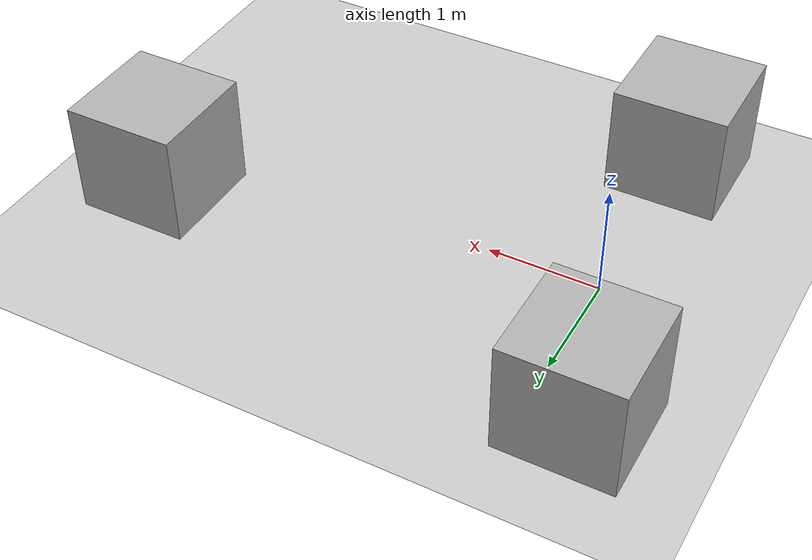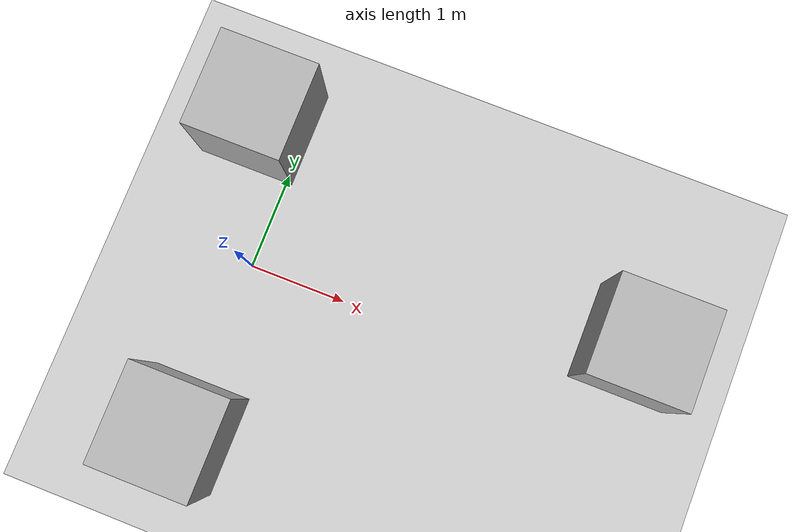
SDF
<sdf version='1.7'>
  <world name='empty'>
    <scene>
      <shadows>false</shadows>
      <ambient>0.400000006 0.400000006 0.400000006 1</ambient>
      <background>0.699999988 0.699999988 0.699999988 1</background>
    </scene>
    <physics name='1ms' type='ignored'>
      <max_step_size>0.001</max_step_size>
      <real_time_factor>1</real_time_factor>
      <real_time_update_rate>25</real_time_update_rate>
    </physics>
    <plugin name='gz::sim::systems::Physics' filename='gz-sim-physics-system'/>
    <plugin name='gz::sim::systems::UserCommands' filename='gz-sim-user-commands-system'/>
    <plugin name='gz::sim::systems::SceneBroadcaster' filename='gz-sim-scene-broadcaster-system'/>
    <plugin name='gz::sim::systems::Sensors' filename='gz-sim-sensors-system'>
      <render_engine>ogre2</render_engine>
    </plugin>
    <plugin name='gz::sim::systems::Contact' filename='gz-sim-contact-system'/>
    <gravity>0 0 -9.8000000000000007</gravity>
    <magnetic_field>5.5644999999999998e-06 2.2875799999999999e-05 -4.2388400000000002e-05</magnetic_field>
    <atmosphere type='adiabatic'/>
    <model name='ground_plane'>
      <static>true</static>
      <link name='link'>
        <collision name='collision'>
          <geometry>
            <plane>
              <normal>0 0 1</normal>
              <size>100 100</size>
            </plane>
          </geometry>
          <surface>
            <friction>
              <ode/>
            </friction>
            <bounce/>
            <contact/>
          </surface>
        </collision>
        <visual name='visual'>
          <geometry>
            <plane>
              <normal>0 0 1</normal>
              <size>100 100</size>
            </plane>
          </geometry>
          <material>
            <ambient>0.800000012 0.800000012 0.800000012 1</ambient>
            <diffuse>0.800000012 0.800000012 0.800000012 1</diffuse>
            <specular>0.800000012 0.800000012 0.800000012 1</specular>
          </material>
        </visual>
        <pose>0 0 0 0 0 0</pose>
        <inertial>
          <pose>0 0 0 0 0 0</pose>
          <mass>1</mass>
          <inertia>
            <ixx>1</ixx>
            <ixy>0</ixy>
            <ixz>0</ixz>
            <iyy>1</iyy>
            <iyz>0</iyz>
            <izz>1</izz>
          </inertia>
        </inertial>
        <enable_wind>false</enable_wind>
      </link>
      <pose>0 0 0 0 0 0</pose>
      <self_collide>false</self_collide>
    </model>

    <model name='box'>
      <pose>3.8641762684934875 0.61530962220477359 0.49999999990199806 6.2287739151293738e-22 9.3279666454713669e-22 -3.6315533669320137e-22</pose>
      <link name='box_link'>
        <inertial>
          <inertia>
            <ixx>0.16666</ixx>
            <ixy>0</ixy>
            <ixz>0</ixz>
            <iyy>0.16666</iyy>
            <iyz>0</iyz>
            <izz>0.16666</izz>
          </inertia>
          <mass>1</mass>
          <pose>0 0 0 0 0 0</pose>
        </inertial>
        <collision name='box_collision'>
          <geometry>
            <box>
              <size>1 1 1</size>
            </box>
          </geometry>
          <surface>
            <friction>
              <ode/>
            </friction>
            <bounce/>
            <contact/>
          </surface>
        </collision>
        <visual name='box_visual'>
          <geometry>
            <box>
              <size>1 1 1</size>
            </box>
          </geometry>
          <material>
            <ambient>0.300000012 0.300000012 0.300000012 1</ambient>
            <diffuse>0.699999988 0.699999988 0.699999988 1</diffuse>
            <specular>1 1 1 1</specular>
          </material>
        </visual>
        <pose>0 0 0 0 0 0</pose>
        <enable_wind>false</enable_wind>
      </link>
      <static>false</static>
      <self_collide>false</self_collide>
    </model>
    <model name='box_0'>
      <pose>-0.010855815844635686 -1.7495715743871512 0.49999999990199806 6.2287739151293738e-22 9.3279666454713669e-22 -3.6315533669320137e-22</pose>
      <link name='box_link'>
        <inertial>
          <inertia>
            <ixx>0.16666</ixx>
            <ixy>0</ixy>
            <ixz>0</ixz>
            <iyy>0.16666</iyy>
            <iyz>0</iyz>
            <izz>0.16666</izz>
          </inertia>
          <mass>1</mass>
          <pose>0 0 0 0 0 0</pose>
        </inertial>
        <collision name='box_collision'>
          <geometry>
            <box>
              <size>1 1 1</size>
            </box>
          </geometry>
          <surface>
            <friction>
              <ode/>
            </friction>
            <bounce/>
            <contact/>
          </surface>
        </collision>
        <visual name='box_visual'>
          <geometry>
            <box>
              <size>1 1 1</size>
            </box>
          </geometry>
          <material>
            <ambient>0.300000012 0.300000012 0.300000012 1</ambient>
            <diffuse>0.699999988 0.699999988 0.699999988 1</diffuse>
            <specular>1 1 1 1</specular>
          </material>
        </visual>
        <pose>0 0 0 0 0 0</pose>
        <enable_wind>false</enable_wind>
      </link>
      <static>false</static>
      <self_collide>false</self_collide>
    </model>
    <model name='box_1'>
      <pose>-0.44393747454936516 1.4276057570719587 0.49999999990199806 6.2287739151293738e-22 9.3279666454713669e-22 -3.6315533669320137e-22</pose>
      <link name='box_link'>
        <inertial>
          <inertia>
            <ixx>0.16666</ixx>
            <ixy>0</ixy>
            <ixz>0</ixz>
            <iyy>0.16666</iyy>
            <iyz>0</iyz>
            <izz>0.16666</izz>
          </inertia>
          <mass>1</mass>
          <pose>0 0 0 0 0 0</pose>
        </inertial>
        <collision name='box_collision'>
          <geometry>
            <box>
              <size>1 1 1</size>
            </box>
          </geometry>
          <surface>
            <friction>
              <ode/>
            </friction>
            <bounce/>
            <contact/>
          </surface>
        </collision>
        <visual name='box_visual'>
          <geometry>
            <box>
              <size>1 1 1</size>
            </box>
          </geometry>
          <material>
            <ambient>0.300000012 0.300000012 0.300000012 1</ambient>
            <diffuse>0.699999988 0.699999988 0.699999988 1</diffuse>
            <specular>1 1 1 1</specular>
          </material>
        </visual>
        <pose>0 0 0 0 0 0</pose>
        <enable_wind>false</enable_wind>
      </link>
      <static>false</static>
      <self_collide>false</self_collide>
    </model>
    <light name='sun' type='directional'>
      <pose>0 0 10 0 0 0</pose>
      <cast_shadows>true</cast_shadows>
      <intensity>1</intensity>
      <direction>-0.5 0.10000000000000001 -0.90000000000000002</direction>
      <diffuse>0.800000012 0.800000012 0.800000012 1</diffuse>
      <specular>0.200000003 0.200000003 0.200000003 1</specular>
      <attenuation>
        <range>1000</range>
        <linear>0.01</linear>
        <constant>0.90000000000000002</constant>
        <quadratic>0.001</quadratic>
      </attenuation>
      <spot>
        <inner_angle>0</inner_angle>
        <outer_angle>0</outer_angle>
        <falloff>0</falloff>
      </spot>
    </light>
  </world>
</sdf>
